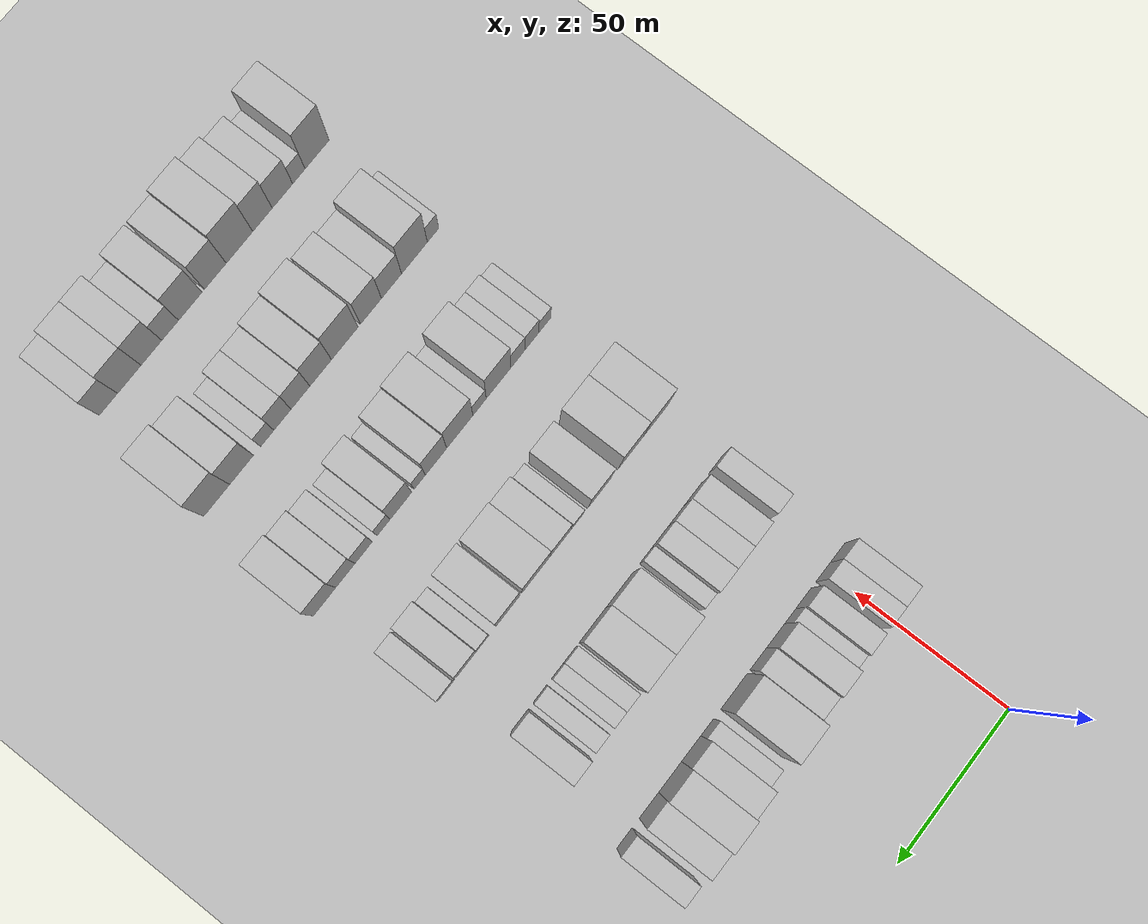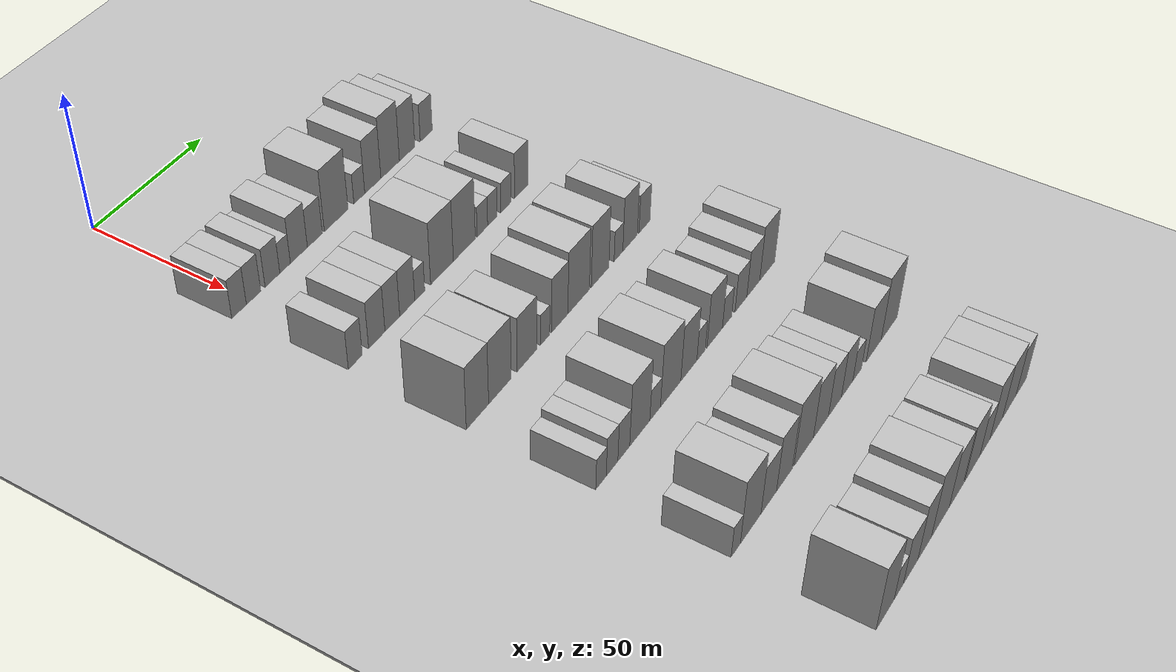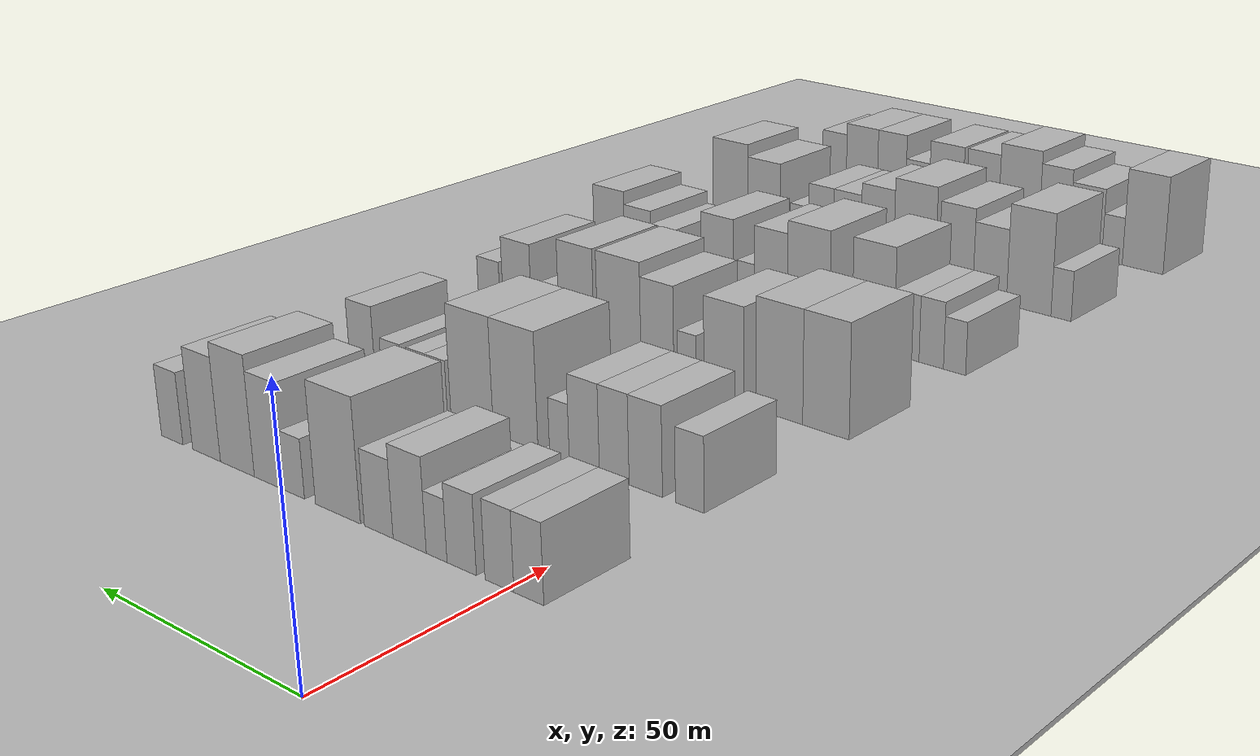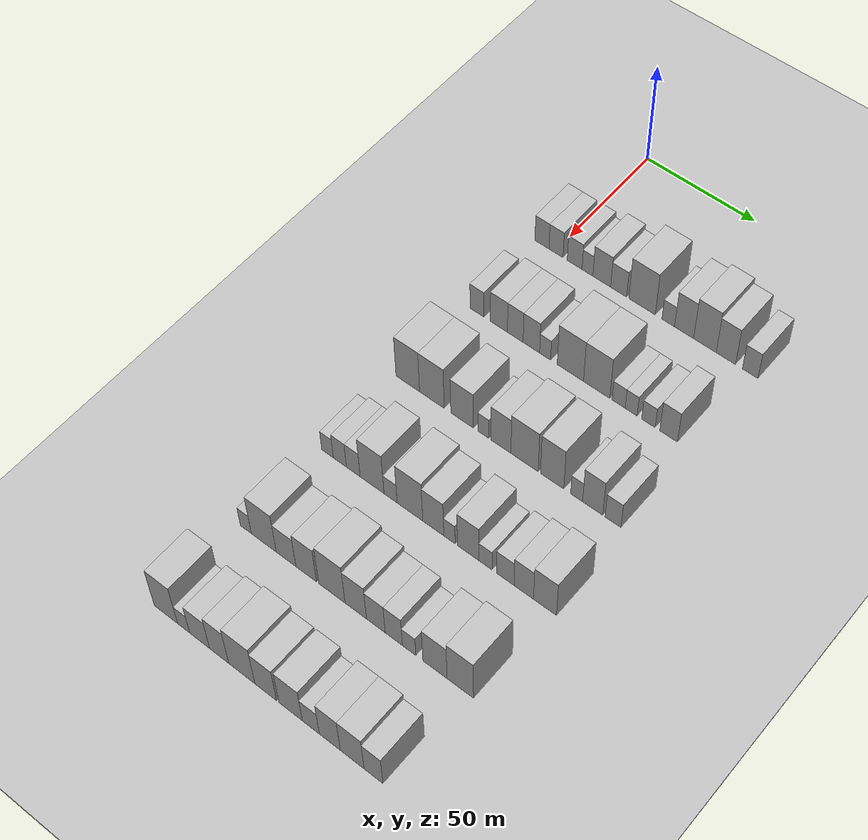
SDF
<sdf version="1.6">
 <world name="default">
  <include><name>ground_plane_1</name><uri>model://HANNAS_ground_plane</uri></include>
  <include>
   <name>ground_plane_2</name>
   <uri>model://HANNAS_ground_plane</uri>
   <pose>100 0 0  0 0 0</pose>
  </include>
  <model name="building_73">
   <static>1</static>
   <pose>50.0000 -5.6154 0 0.000000 0.000000 0.000000</pose>
   <link name="link">
    <pose>0 0 7.50 0 0 0</pose>
    <collision name="collision"><geometry><box><size>20.0000 6.6509 15.0000</size></box></geometry></collision>
    <visual name="visual">
     <cast_shadows>0</cast_shadows>
     <geometry><box><size>20.0000 6.6509 15.0000</size></box></geometry>
     <material>
      <script>
       <uri>model://HANNAS_wall/materials/scripts</uri>
       <uri>model://HANNAS_wall/materials/textures</uri>
       <name>vrc/HANNAS_wall</name>
      </script>
     </material>
    </visual>
   </link>
  </model>
  <model name="building_74">
   <static>1</static>
   <pose>50.0000 1.0127 0 0.000000 0.000000 0.000000</pose>
   <link name="link">
    <pose>0 0 7.50 0 0 0</pose>
    <collision name="collision"><geometry><box><size>20.0000 6.6054 15.0000</size></box></geometry></collision>
    <visual name="visual">
     <cast_shadows>0</cast_shadows>
     <geometry><box><size>20.0000 6.6054 15.0000</size></box></geometry>
     <material>
      <script>
       <uri>model://HANNAS_wall/materials/scripts</uri>
       <uri>model://HANNAS_wall/materials/textures</uri>
       <name>vrc/HANNAS_wall</name>
      </script>
     </material>
    </visual>
   </link>
  </model>
  <model name="building_75">
   <static>1</static>
   <pose>50.0000 9.7789 0 0.000000 0.000000 0.000000</pose>
   <link name="link">
    <pose>0 0 7.50 0 0 0</pose>
    <collision name="collision"><geometry><box><size>20.0000 6.9269 15.0000</size></box></geometry></collision>
    <visual name="visual">
     <cast_shadows>0</cast_shadows>
     <geometry><box><size>20.0000 6.9269 15.0000</size></box></geometry>
     <material>
      <script>
       <uri>model://HANNAS_wall/materials/scripts</uri>
       <uri>model://HANNAS_wall/materials/textures</uri>
       <name>vrc/HANNAS_wall</name>
      </script>
     </material>
    </visual>
   </link>
  </model>
  <model name="building_76">
   <static>1</static>
   <pose>50.0000 15.7514 0 0.000000 0.000000 0.000000</pose>
   <link name="link">
    <pose>0 0 6.00 0 0 0</pose>
    <collision name="collision"><geometry><box><size>20.0000 5.0181 12.0000</size></box></geometry></collision>
    <visual name="visual">
     <cast_shadows>0</cast_shadows>
     <geometry><box><size>20.0000 5.0181 12.0000</size></box></geometry>
     <material>
      <script>
       <uri>model://HANNAS_wall/materials/scripts</uri>
       <uri>model://HANNAS_wall/materials/textures</uri>
       <name>vrc/HANNAS_wall</name>
      </script>
     </material>
    </visual>
   </link>
  </model>
  <model name="building_77">
   <static>1</static>
   <pose>50.0000 22.3753 0 0.000000 0.000000 0.000000</pose>
   <link name="link">
    <pose>0 0 9.00 0 0 0</pose>
    <collision name="collision"><geometry><box><size>20.0000 8.2296 18.0000</size></box></geometry></collision>
    <visual name="visual">
     <cast_shadows>0</cast_shadows>
     <geometry><box><size>20.0000 8.2296 18.0000</size></box></geometry>
     <material>
      <script>
       <uri>model://HANNAS_wall/materials/scripts</uri>
       <uri>model://HANNAS_wall/materials/textures</uri>
       <name>vrc/HANNAS_wall</name>
      </script>
     </material>
    </visual>
   </link>
  </model>
  <model name="building_78">
   <static>1</static>
   <pose>50.0000 30.1486 0 0.000000 0.000000 0.000000</pose>
   <link name="link">
    <pose>0 0 7.50 0 0 0</pose>
    <collision name="collision"><geometry><box><size>20.0000 7.3172 15.0000</size></box></geometry></collision>
    <visual name="visual">
     <cast_shadows>0</cast_shadows>
     <geometry><box><size>20.0000 7.3172 15.0000</size></box></geometry>
     <material>
      <script>
       <uri>model://HANNAS_wall/materials/scripts</uri>
       <uri>model://HANNAS_wall/materials/textures</uri>
       <name>vrc/HANNAS_wall</name>
      </script>
     </material>
    </visual>
   </link>
  </model>
  <model name="building_79">
   <static>1</static>
   <pose>50.0000 40.7831 0 0.000000 0.000000 0.000000</pose>
   <link name="link">
    <pose>0 0 12.00 0 0 0</pose>
    <collision name="collision"><geometry><box><size>20.0000 11.9518 24.0000</size></box></geometry></collision>
    <visual name="visual">
     <cast_shadows>0</cast_shadows>
     <geometry><box><size>20.0000 11.9518 24.0000</size></box></geometry>
     <material>
      <script>
       <uri>model://HANNAS_wall/materials/scripts</uri>
       <uri>model://HANNAS_wall/materials/textures</uri>
       <name>vrc/HANNAS_wall</name>
      </script>
     </material>
    </visual>
   </link>
  </model>
  <model name="building_80">
   <static>1</static>
   <pose>50.0000 52.5803 0 0.000000 0.000000 0.000000</pose>
   <link name="link">
    <pose>0 0 6.00 0 0 0</pose>
    <collision name="collision"><geometry><box><size>20.0000 5.6425 12.0000</size></box></geometry></collision>
    <visual name="visual">
     <cast_shadows>0</cast_shadows>
     <geometry><box><size>20.0000 5.6425 12.0000</size></box></geometry>
     <material>
      <script>
       <uri>model://HANNAS_wall/materials/scripts</uri>
       <uri>model://HANNAS_wall/materials/textures</uri>
       <name>vrc/HANNAS_wall</name>
      </script>
     </material>
    </visual>
   </link>
  </model>
  <model name="building_81">
   <static>1</static>
   <pose>50.0000 59.6201 0 0.000000 0.000000 0.000000</pose>
   <link name="link">
    <pose>0 0 10.50 0 0 0</pose>
    <collision name="collision"><geometry><box><size>20.0000 8.4371 21.0000</size></box></geometry></collision>
    <visual name="visual">
     <cast_shadows>0</cast_shadows>
     <geometry><box><size>20.0000 8.4371 21.0000</size></box></geometry>
     <material>
      <script>
       <uri>model://HANNAS_wall/materials/scripts</uri>
       <uri>model://HANNAS_wall/materials/textures</uri>
       <name>vrc/HANNAS_wall</name>
      </script>
     </material>
    </visual>
   </link>
  </model>
  <model name="building_82">
   <static>1</static>
   <pose>50.0000 68.8127 0 0.000000 0.000000 0.000000</pose>
   <link name="link">
    <pose>0 0 12.00 0 0 0</pose>
    <collision name="collision"><geometry><box><size>20.0000 9.9481 24.0000</size></box></geometry></collision>
    <visual name="visual">
     <cast_shadows>0</cast_shadows>
     <geometry><box><size>20.0000 9.9481 24.0000</size></box></geometry>
     <material>
      <script>
       <uri>model://HANNAS_wall/materials/scripts</uri>
       <uri>model://HANNAS_wall/materials/textures</uri>
       <name>vrc/HANNAS_wall</name>
      </script>
     </material>
    </visual>
   </link>
  </model>
  <model name="building_83">
   <static>1</static>
   <pose>50.0000 77.9871 0 0.000000 0.000000 0.000000</pose>
   <link name="link">
    <pose>0 0 10.50 0 0 0</pose>
    <collision name="collision"><geometry><box><size>20.0000 8.4007 21.0000</size></box></geometry></collision>
    <visual name="visual">
     <cast_shadows>0</cast_shadows>
     <geometry><box><size>20.0000 8.4007 21.0000</size></box></geometry>
     <material>
      <script>
       <uri>model://HANNAS_wall/materials/scripts</uri>
       <uri>model://HANNAS_wall/materials/textures</uri>
       <name>vrc/HANNAS_wall</name>
      </script>
     </material>
    </visual>
   </link>
  </model>
  <model name="building_84">
   <static>1</static>
   <pose>50.0000 88.5403 0 0.000000 0.000000 0.000000</pose>
   <link name="link">
    <pose>0 0 7.50 0 0 0</pose>
    <collision name="collision"><geometry><box><size>20.0000 6.7057 15.0000</size></box></geometry></collision>
    <visual name="visual">
     <cast_shadows>0</cast_shadows>
     <geometry><box><size>20.0000 6.7057 15.0000</size></box></geometry>
     <material>
      <script>
       <uri>model://HANNAS_wall/materials/scripts</uri>
       <uri>model://HANNAS_wall/materials/textures</uri>
       <name>vrc/HANNAS_wall</name>
      </script>
     </material>
    </visual>
   </link>
  </model>
  <model name="building_210">
   <static>1</static>
   <pose>90.0000 -4.5265 0 0.000000 0.000000 0.000000</pose>
   <link name="link">
    <pose>0 0 7.50 0 0 0</pose>
    <collision name="collision"><geometry><box><size>20.0000 6.5561 15.0000</size></box></geometry></collision>
    <visual name="visual">
     <cast_shadows>0</cast_shadows>
     <geometry><box><size>20.0000 6.5561 15.0000</size></box></geometry>
     <material>
      <script>
       <uri>model://HANNAS_wall/materials/scripts</uri>
       <uri>model://HANNAS_wall/materials/textures</uri>
       <name>vrc/HANNAS_wall</name>
      </script>
     </material>
    </visual>
   </link>
  </model>
  <model name="building_211">
   <static>1</static>
   <pose>90.0000 5.6943 0 0.000000 0.000000 0.000000</pose>
   <link name="link">
    <pose>0 0 9.00 0 0 0</pose>
    <collision name="collision"><geometry><box><size>20.0000 7.8855 18.0000</size></box></geometry></collision>
    <visual name="visual">
     <cast_shadows>0</cast_shadows>
     <geometry><box><size>20.0000 7.8855 18.0000</size></box></geometry>
     <material>
      <script>
       <uri>model://HANNAS_wall/materials/scripts</uri>
       <uri>model://HANNAS_wall/materials/textures</uri>
       <name>vrc/HANNAS_wall</name>
      </script>
     </material>
    </visual>
   </link>
  </model>
  <model name="building_212">
   <static>1</static>
   <pose>90.0000 13.2458 0 0.000000 0.000000 0.000000</pose>
   <link name="link">
    <pose>0 0 9.00 0 0 0</pose>
    <collision name="collision"><geometry><box><size>20.0000 7.2176 18.0000</size></box></geometry></collision>
    <visual name="visual">
     <cast_shadows>0</cast_shadows>
     <geometry><box><size>20.0000 7.2176 18.0000</size></box></geometry>
     <material>
      <script>
       <uri>model://HANNAS_wall/materials/scripts</uri>
       <uri>model://HANNAS_wall/materials/textures</uri>
       <name>vrc/HANNAS_wall</name>
      </script>
     </material>
    </visual>
   </link>
  </model>
  <model name="building_213">
   <static>1</static>
   <pose>90.0000 20.6172 0 0.000000 0.000000 0.000000</pose>
   <link name="link">
    <pose>0 0 9.00 0 0 0</pose>
    <collision name="collision"><geometry><box><size>20.0000 7.5252 18.0000</size></box></geometry></collision>
    <visual name="visual">
     <cast_shadows>0</cast_shadows>
     <geometry><box><size>20.0000 7.5252 18.0000</size></box></geometry>
     <material>
      <script>
       <uri>model://HANNAS_wall/materials/scripts</uri>
       <uri>model://HANNAS_wall/materials/textures</uri>
       <name>vrc/HANNAS_wall</name>
      </script>
     </material>
    </visual>
   </link>
  </model>
  <model name="building_214">
   <static>1</static>
   <pose>90.0000 26.8940 0 0.000000 0.000000 0.000000</pose>
   <link name="link">
    <pose>0 0 6.00 0 0 0</pose>
    <collision name="collision"><geometry><box><size>20.0000 5.0283 12.0000</size></box></geometry></collision>
    <visual name="visual">
     <cast_shadows>0</cast_shadows>
     <geometry><box><size>20.0000 5.0283 12.0000</size></box></geometry>
     <material>
      <script>
       <uri>model://HANNAS_wall/materials/scripts</uri>
       <uri>model://HANNAS_wall/materials/textures</uri>
       <name>vrc/HANNAS_wall</name>
      </script>
     </material>
    </visual>
   </link>
  </model>
  <model name="building_215">
   <static>1</static>
   <pose>90.0000 38.3117 0 0.000000 0.000000 0.000000</pose>
   <link name="link">
    <pose>0 0 12.00 0 0 0</pose>
    <collision name="collision"><geometry><box><size>20.0000 11.8071 24.0000</size></box></geometry></collision>
    <visual name="visual">
     <cast_shadows>0</cast_shadows>
     <geometry><box><size>20.0000 11.8071 24.0000</size></box></geometry>
     <material>
      <script>
       <uri>model://HANNAS_wall/materials/scripts</uri>
       <uri>model://HANNAS_wall/materials/textures</uri>
       <name>vrc/HANNAS_wall</name>
      </script>
     </material>
    </visual>
   </link>
  </model>
  <model name="building_216">
   <static>1</static>
   <pose>90.0000 50.0583 0 0.000000 0.000000 0.000000</pose>
   <link name="link">
    <pose>0 0 12.00 0 0 0</pose>
    <collision name="collision"><geometry><box><size>20.0000 11.6860 24.0000</size></box></geometry></collision>
    <visual name="visual">
     <cast_shadows>0</cast_shadows>
     <geometry><box><size>20.0000 11.6860 24.0000</size></box></geometry>
     <material>
      <script>
       <uri>model://HANNAS_wall/materials/scripts</uri>
       <uri>model://HANNAS_wall/materials/textures</uri>
       <name>vrc/HANNAS_wall</name>
      </script>
     </material>
    </visual>
   </link>
  </model>
  <model name="building_217">
   <static>1</static>
   <pose>90.0000 59.7636 0 0.000000 0.000000 0.000000</pose>
   <link name="link">
    <pose>0 0 6.00 0 0 0</pose>
    <collision name="collision"><geometry><box><size>20.0000 5.7246 12.0000</size></box></geometry></collision>
    <visual name="visual">
     <cast_shadows>0</cast_shadows>
     <geometry><box><size>20.0000 5.7246 12.0000</size></box></geometry>
     <material>
      <script>
       <uri>model://HANNAS_wall/materials/scripts</uri>
       <uri>model://HANNAS_wall/materials/textures</uri>
       <name>vrc/HANNAS_wall</name>
      </script>
     </material>
    </visual>
   </link>
  </model>
  <model name="building_218">
   <static>1</static>
   <pose>90.0000 65.2332 0 0.000000 0.000000 0.000000</pose>
   <link name="link">
    <pose>0 0 6.00 0 0 0</pose>
    <collision name="collision"><geometry><box><size>20.0000 5.2145 12.0000</size></box></geometry></collision>
    <visual name="visual">
     <cast_shadows>0</cast_shadows>
     <geometry><box><size>20.0000 5.2145 12.0000</size></box></geometry>
     <material>
      <script>
       <uri>model://HANNAS_wall/materials/scripts</uri>
       <uri>model://HANNAS_wall/materials/textures</uri>
       <name>vrc/HANNAS_wall</name>
      </script>
     </material>
    </visual>
   </link>
  </model>
  <model name="building_219">
   <static>1</static>
   <pose>90.0000 72.7505 0 0.000000 0.000000 0.000000</pose>
   <link name="link">
    <pose>0 0 6.00 0 0 0</pose>
    <collision name="collision"><geometry><box><size>20.0000 5.8200 12.0000</size></box></geometry></collision>
    <visual name="visual">
     <cast_shadows>0</cast_shadows>
     <geometry><box><size>20.0000 5.8200 12.0000</size></box></geometry>
     <material>
      <script>
       <uri>model://HANNAS_wall/materials/scripts</uri>
       <uri>model://HANNAS_wall/materials/textures</uri>
       <name>vrc/HANNAS_wall</name>
      </script>
     </material>
    </visual>
   </link>
  </model>
  <model name="building_220">
   <static>1</static>
   <pose>90.0000 81.4489 0 0.000000 0.000000 0.000000</pose>
   <link name="link">
    <pose>0 0 9.00 0 0 0</pose>
    <collision name="collision"><geometry><box><size>20.0000 7.5768 18.0000</size></box></geometry></collision>
    <visual name="visual">
     <cast_shadows>0</cast_shadows>
     <geometry><box><size>20.0000 7.5768 18.0000</size></box></geometry>
     <material>
      <script>
       <uri>model://HANNAS_wall/materials/scripts</uri>
       <uri>model://HANNAS_wall/materials/textures</uri>
       <name>vrc/HANNAS_wall</name>
      </script>
     </material>
    </visual>
   </link>
  </model>
  <model name="building_346">
   <static>1</static>
   <pose>130.0000 -3.8484 0 0.000000 0.000000 0.000000</pose>
   <link name="link">
    <pose>0 0 12.00 0 0 0</pose>
    <collision name="collision"><geometry><box><size>20.0000 10.9476 24.0000</size></box></geometry></collision>
    <visual name="visual">
     <cast_shadows>0</cast_shadows>
     <geometry><box><size>20.0000 10.9476 24.0000</size></box></geometry>
     <material>
      <script>
       <uri>model://HANNAS_wall/materials/scripts</uri>
       <uri>model://HANNAS_wall/materials/textures</uri>
       <name>vrc/HANNAS_wall</name>
      </script>
     </material>
    </visual>
   </link>
  </model>
  <model name="building_347">
   <static>1</static>
   <pose>130.0000 7.3048 0 0.000000 0.000000 0.000000</pose>
   <link name="link">
    <pose>0 0 12.00 0 0 0</pose>
    <collision name="collision"><geometry><box><size>20.0000 11.3589 24.0000</size></box></geometry></collision>
    <visual name="visual">
     <cast_shadows>0</cast_shadows>
     <geometry><box><size>20.0000 11.3589 24.0000</size></box></geometry>
     <material>
      <script>
       <uri>model://HANNAS_wall/materials/scripts</uri>
       <uri>model://HANNAS_wall/materials/textures</uri>
       <name>vrc/HANNAS_wall</name>
      </script>
     </material>
    </visual>
   </link>
  </model>
  <model name="building_348">
   <static>1</static>
   <pose>130.0000 21.0989 0 0.000000 0.000000 0.000000</pose>
   <link name="link">
    <pose>0 0 10.50 0 0 0</pose>
    <collision name="collision"><geometry><box><size>20.0000 10.2292 21.0000</size></box></geometry></collision>
    <visual name="visual">
     <cast_shadows>0</cast_shadows>
     <geometry><box><size>20.0000 10.2292 21.0000</size></box></geometry>
     <material>
      <script>
       <uri>model://HANNAS_wall/materials/scripts</uri>
       <uri>model://HANNAS_wall/materials/textures</uri>
       <name>vrc/HANNAS_wall</name>
      </script>
     </material>
    </visual>
   </link>
  </model>
  <model name="building_349">
   <static>1</static>
   <pose>130.0000 30.6666 0 0.000000 0.000000 0.000000</pose>
   <link name="link">
    <pose>0 0 6.00 0 0 0</pose>
    <collision name="collision"><geometry><box><size>20.0000 4.9062 12.0000</size></box></geometry></collision>
    <visual name="visual">
     <cast_shadows>0</cast_shadows>
     <geometry><box><size>20.0000 4.9062 12.0000</size></box></geometry>
     <material>
      <script>
       <uri>model://HANNAS_wall/materials/scripts</uri>
       <uri>model://HANNAS_wall/materials/textures</uri>
       <name>vrc/HANNAS_wall</name>
      </script>
     </material>
    </visual>
   </link>
  </model>
  <model name="building_350">
   <static>1</static>
   <pose>130.0000 38.5355 0 0.000000 0.000000 0.000000</pose>
   <link name="link">
    <pose>0 0 10.50 0 0 0</pose>
    <collision name="collision"><geometry><box><size>20.0000 8.8316 21.0000</size></box></geometry></collision>
    <visual name="visual">
     <cast_shadows>0</cast_shadows>
     <geometry><box><size>20.0000 8.8316 21.0000</size></box></geometry>
     <material>
      <script>
       <uri>model://HANNAS_wall/materials/scripts</uri>
       <uri>model://HANNAS_wall/materials/textures</uri>
       <name>vrc/HANNAS_wall</name>
      </script>
     </material>
    </visual>
   </link>
  </model>
  <model name="building_351">
   <static>1</static>
   <pose>130.0000 48.9456 0 0.000000 0.000000 0.000000</pose>
   <link name="link">
    <pose>0 0 12.00 0 0 0</pose>
    <collision name="collision"><geometry><box><size>20.0000 11.9886 24.0000</size></box></geometry></collision>
    <visual name="visual">
     <cast_shadows>0</cast_shadows>
     <geometry><box><size>20.0000 11.9886 24.0000</size></box></geometry>
     <material>
      <script>
       <uri>model://HANNAS_wall/materials/scripts</uri>
       <uri>model://HANNAS_wall/materials/textures</uri>
       <name>vrc/HANNAS_wall</name>
      </script>
     </material>
    </visual>
   </link>
  </model>
  <model name="building_352">
   <static>1</static>
   <pose>130.0000 60.9845 0 0.000000 0.000000 0.000000</pose>
   <link name="link">
    <pose>0 0 12.00 0 0 0</pose>
    <collision name="collision"><geometry><box><size>20.0000 10.0893 24.0000</size></box></geometry></collision>
    <visual name="visual">
     <cast_shadows>0</cast_shadows>
     <geometry><box><size>20.0000 10.0893 24.0000</size></box></geometry>
     <material>
      <script>
       <uri>model://HANNAS_wall/materials/scripts</uri>
       <uri>model://HANNAS_wall/materials/textures</uri>
       <name>vrc/HANNAS_wall</name>
      </script>
     </material>
    </visual>
   </link>
  </model>
  <model name="building_353">
   <static>1</static>
   <pose>130.0000 71.5853 0 0.000000 0.000000 0.000000</pose>
   <link name="link">
    <pose>0 0 6.00 0 0 0</pose>
    <collision name="collision"><geometry><box><size>20.0000 5.1122 12.0000</size></box></geometry></collision>
    <visual name="visual">
     <cast_shadows>0</cast_shadows>
     <geometry><box><size>20.0000 5.1122 12.0000</size></box></geometry>
     <material>
      <script>
       <uri>model://HANNAS_wall/materials/scripts</uri>
       <uri>model://HANNAS_wall/materials/textures</uri>
       <name>vrc/HANNAS_wall</name>
      </script>
     </material>
    </visual>
   </link>
  </model>
  <model name="building_354">
   <static>1</static>
   <pose>130.0000 78.4220 0 0.000000 0.000000 0.000000</pose>
   <link name="link">
    <pose>0 0 10.50 0 0 0</pose>
    <collision name="collision"><geometry><box><size>20.0000 8.5613 21.0000</size></box></geometry></collision>
    <visual name="visual">
     <cast_shadows>0</cast_shadows>
     <geometry><box><size>20.0000 8.5613 21.0000</size></box></geometry>
     <material>
      <script>
       <uri>model://HANNAS_wall/materials/scripts</uri>
       <uri>model://HANNAS_wall/materials/textures</uri>
       <name>vrc/HANNAS_wall</name>
      </script>
     </material>
    </visual>
   </link>
  </model>
  <model name="building_355">
   <static>1</static>
   <pose>130.0000 87.0344 0 0.000000 0.000000 0.000000</pose>
   <link name="link">
    <pose>0 0 7.50 0 0 0</pose>
    <collision name="collision"><geometry><box><size>20.0000 6.6634 15.0000</size></box></geometry></collision>
    <visual name="visual">
     <cast_shadows>0</cast_shadows>
     <geometry><box><size>20.0000 6.6634 15.0000</size></box></geometry>
     <material>
      <script>
       <uri>model://HANNAS_wall/materials/scripts</uri>
       <uri>model://HANNAS_wall/materials/textures</uri>
       <name>vrc/HANNAS_wall</name>
      </script>
     </material>
    </visual>
   </link>
  </model>
  <model name="building_483">
   <static>1</static>
   <pose>170.0000 -6.4531 0 0.000000 0.000000 0.000000</pose>
   <link name="link">
    <pose>0 0 6.00 0 0 0</pose>
    <collision name="collision"><geometry><box><size>20.0000 5.3533 12.0000</size></box></geometry></collision>
    <visual name="visual">
     <cast_shadows>0</cast_shadows>
     <geometry><box><size>20.0000 5.3533 12.0000</size></box></geometry>
     <material>
      <script>
       <uri>model://HANNAS_wall/materials/scripts</uri>
       <uri>model://HANNAS_wall/materials/textures</uri>
       <name>vrc/HANNAS_wall</name>
      </script>
     </material>
    </visual>
   </link>
  </model>
  <model name="building_484">
   <static>1</static>
   <pose>170.0000 -0.7684 0 0.000000 0.000000 0.000000</pose>
   <link name="link">
    <pose>0 0 7.50 0 0 0</pose>
    <collision name="collision"><geometry><box><size>20.0000 6.0160 15.0000</size></box></geometry></collision>
    <visual name="visual">
     <cast_shadows>0</cast_shadows>
     <geometry><box><size>20.0000 6.0160 15.0000</size></box></geometry>
     <material>
      <script>
       <uri>model://HANNAS_wall/materials/scripts</uri>
       <uri>model://HANNAS_wall/materials/textures</uri>
       <name>vrc/HANNAS_wall</name>
      </script>
     </material>
    </visual>
   </link>
  </model>
  <model name="building_485">
   <static>1</static>
   <pose>170.0000 5.3699 0 0.000000 0.000000 0.000000</pose>
   <link name="link">
    <pose>0 0 7.50 0 0 0</pose>
    <collision name="collision"><geometry><box><size>20.0000 6.2607 15.0000</size></box></geometry></collision>
    <visual name="visual">
     <cast_shadows>0</cast_shadows>
     <geometry><box><size>20.0000 6.2607 15.0000</size></box></geometry>
     <material>
      <script>
       <uri>model://HANNAS_wall/materials/scripts</uri>
       <uri>model://HANNAS_wall/materials/textures</uri>
       <name>vrc/HANNAS_wall</name>
      </script>
     </material>
    </visual>
   </link>
  </model>
  <model name="building_486">
   <static>1</static>
   <pose>170.0000 13.9139 0 0.000000 0.000000 0.000000</pose>
   <link name="link">
    <pose>0 0 12.00 0 0 0</pose>
    <collision name="collision"><geometry><box><size>20.0000 10.8273 24.0000</size></box></geometry></collision>
    <visual name="visual">
     <cast_shadows>0</cast_shadows>
     <geometry><box><size>20.0000 10.8273 24.0000</size></box></geometry>
     <material>
      <script>
       <uri>model://HANNAS_wall/materials/scripts</uri>
       <uri>model://HANNAS_wall/materials/textures</uri>
       <name>vrc/HANNAS_wall</name>
      </script>
     </material>
    </visual>
   </link>
  </model>
  <model name="building_487">
   <static>1</static>
   <pose>170.0000 22.2603 0 0.000000 0.000000 0.000000</pose>
   <link name="link">
    <pose>0 0 6.00 0 0 0</pose>
    <collision name="collision"><geometry><box><size>20.0000 5.8656 12.0000</size></box></geometry></collision>
    <visual name="visual">
     <cast_shadows>0</cast_shadows>
     <geometry><box><size>20.0000 5.8656 12.0000</size></box></geometry>
     <material>
      <script>
       <uri>model://HANNAS_wall/materials/scripts</uri>
       <uri>model://HANNAS_wall/materials/textures</uri>
       <name>vrc/HANNAS_wall</name>
      </script>
     </material>
    </visual>
   </link>
  </model>
  <model name="building_488">
   <static>1</static>
   <pose>170.0000 30.8914 0 0.000000 0.000000 0.000000</pose>
   <link name="link">
    <pose>0 0 12.00 0 0 0</pose>
    <collision name="collision"><geometry><box><size>20.0000 11.3966 24.0000</size></box></geometry></collision>
    <visual name="visual">
     <cast_shadows>0</cast_shadows>
     <geometry><box><size>20.0000 11.3966 24.0000</size></box></geometry>
     <material>
      <script>
       <uri>model://HANNAS_wall/materials/scripts</uri>
       <uri>model://HANNAS_wall/materials/textures</uri>
       <name>vrc/HANNAS_wall</name>
      </script>
     </material>
    </visual>
   </link>
  </model>
  <model name="building_489">
   <static>1</static>
   <pose>170.0000 41.2213 0 0.000000 0.000000 0.000000</pose>
   <link name="link">
    <pose>0 0 10.50 0 0 0</pose>
    <collision name="collision"><geometry><box><size>20.0000 9.2631 21.0000</size></box></geometry></collision>
    <visual name="visual">
     <cast_shadows>0</cast_shadows>
     <geometry><box><size>20.0000 9.2631 21.0000</size></box></geometry>
     <material>
      <script>
       <uri>model://HANNAS_wall/materials/scripts</uri>
       <uri>model://HANNAS_wall/materials/textures</uri>
       <name>vrc/HANNAS_wall</name>
      </script>
     </material>
    </visual>
   </link>
  </model>
  <model name="building_490">
   <static>1</static>
   <pose>170.0000 48.3130 0 0.000000 0.000000 0.000000</pose>
   <link name="link">
    <pose>0 0 6.00 0 0 0</pose>
    <collision name="collision"><geometry><box><size>20.0000 4.9202 12.0000</size></box></geometry></collision>
    <visual name="visual">
     <cast_shadows>0</cast_shadows>
     <geometry><box><size>20.0000 4.9202 12.0000</size></box></geometry>
     <material>
      <script>
       <uri>model://HANNAS_wall/materials/scripts</uri>
       <uri>model://HANNAS_wall/materials/textures</uri>
       <name>vrc/HANNAS_wall</name>
      </script>
     </material>
    </visual>
   </link>
  </model>
  <model name="building_491">
   <static>1</static>
   <pose>170.0000 56.3992 0 0.000000 0.000000 0.000000</pose>
   <link name="link">
    <pose>0 0 10.50 0 0 0</pose>
    <collision name="collision"><geometry><box><size>20.0000 9.2522 21.0000</size></box></geometry></collision>
    <visual name="visual">
     <cast_shadows>0</cast_shadows>
     <geometry><box><size>20.0000 9.2522 21.0000</size></box></geometry>
     <material>
      <script>
       <uri>model://HANNAS_wall/materials/scripts</uri>
       <uri>model://HANNAS_wall/materials/textures</uri>
       <name>vrc/HANNAS_wall</name>
      </script>
     </material>
    </visual>
   </link>
  </model>
  <model name="building_492">
   <static>1</static>
   <pose>170.0000 63.8283 0 0.000000 0.000000 0.000000</pose>
   <link name="link">
    <pose>0 0 6.00 0 0 0</pose>
    <collision name="collision"><geometry><box><size>20.0000 5.6061 12.0000</size></box></geometry></collision>
    <visual name="visual">
     <cast_shadows>0</cast_shadows>
     <geometry><box><size>20.0000 5.6061 12.0000</size></box></geometry>
     <material>
      <script>
       <uri>model://HANNAS_wall/materials/scripts</uri>
       <uri>model://HANNAS_wall/materials/textures</uri>
       <name>vrc/HANNAS_wall</name>
      </script>
     </material>
    </visual>
   </link>
  </model>
  <model name="building_493">
   <static>1</static>
   <pose>170.0000 72.3149 0 0.000000 0.000000 0.000000</pose>
   <link name="link">
    <pose>0 0 7.50 0 0 0</pose>
    <collision name="collision"><geometry><box><size>20.0000 7.3670 15.0000</size></box></geometry></collision>
    <visual name="visual">
     <cast_shadows>0</cast_shadows>
     <geometry><box><size>20.0000 7.3670 15.0000</size></box></geometry>
     <material>
      <script>
       <uri>model://HANNAS_wall/materials/scripts</uri>
       <uri>model://HANNAS_wall/materials/textures</uri>
       <name>vrc/HANNAS_wall</name>
      </script>
     </material>
    </visual>
   </link>
  </model>
  <model name="building_494">
   <static>1</static>
   <pose>170.0000 80.0806 0 0.000000 0.000000 0.000000</pose>
   <link name="link">
    <pose>0 0 9.00 0 0 0</pose>
    <collision name="collision"><geometry><box><size>20.0000 8.1645 18.0000</size></box></geometry></collision>
    <visual name="visual">
     <cast_shadows>0</cast_shadows>
     <geometry><box><size>20.0000 8.1645 18.0000</size></box></geometry>
     <material>
      <script>
       <uri>model://HANNAS_wall/materials/scripts</uri>
       <uri>model://HANNAS_wall/materials/textures</uri>
       <name>vrc/HANNAS_wall</name>
      </script>
     </material>
    </visual>
   </link>
  </model>
  <model name="building_495">
   <static>1</static>
   <pose>170.0000 88.9478 0 0.000000 0.000000 0.000000</pose>
   <link name="link">
    <pose>0 0 10.50 0 0 0</pose>
    <collision name="collision"><geometry><box><size>20.0000 9.5699 21.0000</size></box></geometry></collision>
    <visual name="visual">
     <cast_shadows>0</cast_shadows>
     <geometry><box><size>20.0000 9.5699 21.0000</size></box></geometry>
     <material>
      <script>
       <uri>model://HANNAS_wall/materials/scripts</uri>
       <uri>model://HANNAS_wall/materials/textures</uri>
       <name>vrc/HANNAS_wall</name>
      </script>
     </material>
    </visual>
   </link>
  </model>
  <model name="building_624">
   <static>1</static>
   <pose>210.0000 -7.7898 0 0.000000 0.000000 0.000000</pose>
   <link name="link">
    <pose>0 0 6.00 0 0 0</pose>
    <collision name="collision"><geometry><box><size>20.0000 5.0367 12.0000</size></box></geometry></collision>
    <visual name="visual">
     <cast_shadows>0</cast_shadows>
     <geometry><box><size>20.0000 5.0367 12.0000</size></box></geometry>
     <material>
      <script>
       <uri>model://HANNAS_wall/materials/scripts</uri>
       <uri>model://HANNAS_wall/materials/textures</uri>
       <name>vrc/HANNAS_wall</name>
      </script>
     </material>
    </visual>
   </link>
  </model>
  <model name="building_625">
   <static>1</static>
   <pose>210.0000 0.4265 0 0.000000 0.000000 0.000000</pose>
   <link name="link">
    <pose>0 0 12.00 0 0 0</pose>
    <collision name="collision"><geometry><box><size>20.0000 11.3960 24.0000</size></box></geometry></collision>
    <visual name="visual">
     <cast_shadows>0</cast_shadows>
     <geometry><box><size>20.0000 11.3960 24.0000</size></box></geometry>
     <material>
      <script>
       <uri>model://HANNAS_wall/materials/scripts</uri>
       <uri>model://HANNAS_wall/materials/textures</uri>
       <name>vrc/HANNAS_wall</name>
      </script>
     </material>
    </visual>
   </link>
  </model>
  <model name="building_626">
   <static>1</static>
   <pose>210.0000 10.5459 0 0.000000 0.000000 0.000000</pose>
   <link name="link">
    <pose>0 0 9.00 0 0 0</pose>
    <collision name="collision"><geometry><box><size>20.0000 8.8427 18.0000</size></box></geometry></collision>
    <visual name="visual">
     <cast_shadows>0</cast_shadows>
     <geometry><box><size>20.0000 8.8427 18.0000</size></box></geometry>
     <material>
      <script>
       <uri>model://HANNAS_wall/materials/scripts</uri>
       <uri>model://HANNAS_wall/materials/textures</uri>
       <name>vrc/HANNAS_wall</name>
      </script>
     </material>
    </visual>
   </link>
  </model>
  <model name="building_627">
   <static>1</static>
   <pose>210.0000 19.5676 0 0.000000 0.000000 0.000000</pose>
   <link name="link">
    <pose>0 0 10.50 0 0 0</pose>
    <collision name="collision"><geometry><box><size>20.0000 9.2007 21.0000</size></box></geometry></collision>
    <visual name="visual">
     <cast_shadows>0</cast_shadows>
     <geometry><box><size>20.0000 9.2007 21.0000</size></box></geometry>
     <material>
      <script>
       <uri>model://HANNAS_wall/materials/scripts</uri>
       <uri>model://HANNAS_wall/materials/textures</uri>
       <name>vrc/HANNAS_wall</name>
      </script>
     </material>
    </visual>
   </link>
  </model>
  <model name="building_628">
   <static>1</static>
   <pose>210.0000 30.9552 0 0.000000 0.000000 0.000000</pose>
   <link name="link">
    <pose>0 0 12.00 0 0 0</pose>
    <collision name="collision"><geometry><box><size>20.0000 11.5745 24.0000</size></box></geometry></collision>
    <visual name="visual">
     <cast_shadows>0</cast_shadows>
     <geometry><box><size>20.0000 11.5745 24.0000</size></box></geometry>
     <material>
      <script>
       <uri>model://HANNAS_wall/materials/scripts</uri>
       <uri>model://HANNAS_wall/materials/textures</uri>
       <name>vrc/HANNAS_wall</name>
      </script>
     </material>
    </visual>
   </link>
  </model>
  <model name="building_629">
   <static>1</static>
   <pose>210.0000 41.4076 0 0.000000 0.000000 0.000000</pose>
   <link name="link">
    <pose>0 0 10.50 0 0 0</pose>
    <collision name="collision"><geometry><box><size>20.0000 9.3303 21.0000</size></box></geometry></collision>
    <visual name="visual">
     <cast_shadows>0</cast_shadows>
     <geometry><box><size>20.0000 9.3303 21.0000</size></box></geometry>
     <material>
      <script>
       <uri>model://HANNAS_wall/materials/scripts</uri>
       <uri>model://HANNAS_wall/materials/textures</uri>
       <name>vrc/HANNAS_wall</name>
      </script>
     </material>
    </visual>
   </link>
  </model>
  <model name="building_630">
   <static>1</static>
   <pose>210.0000 50.0984 0 0.000000 0.000000 0.000000</pose>
   <link name="link">
    <pose>0 0 9.00 0 0 0</pose>
    <collision name="collision"><geometry><box><size>20.0000 8.0513 18.0000</size></box></geometry></collision>
    <visual name="visual">
     <cast_shadows>0</cast_shadows>
     <geometry><box><size>20.0000 8.0513 18.0000</size></box></geometry>
     <material>
      <script>
       <uri>model://HANNAS_wall/materials/scripts</uri>
       <uri>model://HANNAS_wall/materials/textures</uri>
       <name>vrc/HANNAS_wall</name>
      </script>
     </material>
    </visual>
   </link>
  </model>
  <model name="building_631">
   <static>1</static>
   <pose>210.0000 57.7943 0 0.000000 0.000000 0.000000</pose>
   <link name="link">
    <pose>0 0 9.00 0 0 0</pose>
    <collision name="collision"><geometry><box><size>20.0000 7.3405 18.0000</size></box></geometry></collision>
    <visual name="visual">
     <cast_shadows>0</cast_shadows>
     <geometry><box><size>20.0000 7.3405 18.0000</size></box></geometry>
     <material>
      <script>
       <uri>model://HANNAS_wall/materials/scripts</uri>
       <uri>model://HANNAS_wall/materials/textures</uri>
       <name>vrc/HANNAS_wall</name>
      </script>
     </material>
    </visual>
   </link>
  </model>
  <model name="building_632">
   <static>1</static>
   <pose>210.0000 64.3118 0 0.000000 0.000000 0.000000</pose>
   <link name="link">
    <pose>0 0 6.00 0 0 0</pose>
    <collision name="collision"><geometry><box><size>20.0000 5.6946 12.0000</size></box></geometry></collision>
    <visual name="visual">
     <cast_shadows>0</cast_shadows>
     <geometry><box><size>20.0000 5.6946 12.0000</size></box></geometry>
     <material>
      <script>
       <uri>model://HANNAS_wall/materials/scripts</uri>
       <uri>model://HANNAS_wall/materials/textures</uri>
       <name>vrc/HANNAS_wall</name>
      </script>
     </material>
    </visual>
   </link>
  </model>
  <model name="building_633">
   <static>1</static>
   <pose>210.0000 75.2051 0 0.000000 0.000000 0.000000</pose>
   <link name="link">
    <pose>0 0 10.50 0 0 0</pose>
    <collision name="collision"><geometry><box><size>20.0000 10.0919 21.0000</size></box></geometry></collision>
    <visual name="visual">
     <cast_shadows>0</cast_shadows>
     <geometry><box><size>20.0000 10.0919 21.0000</size></box></geometry>
     <material>
      <script>
       <uri>model://HANNAS_wall/materials/scripts</uri>
       <uri>model://HANNAS_wall/materials/textures</uri>
       <name>vrc/HANNAS_wall</name>
      </script>
     </material>
    </visual>
   </link>
  </model>
  <model name="building_634">
   <static>1</static>
   <pose>210.0000 85.7115 0 0.000000 0.000000 0.000000</pose>
   <link name="link">
    <pose>0 0 12.00 0 0 0</pose>
    <collision name="collision"><geometry><box><size>20.0000 10.9210 24.0000</size></box></geometry></collision>
    <visual name="visual">
     <cast_shadows>0</cast_shadows>
     <geometry><box><size>20.0000 10.9210 24.0000</size></box></geometry>
     <material>
      <script>
       <uri>model://HANNAS_wall/materials/scripts</uri>
       <uri>model://HANNAS_wall/materials/textures</uri>
       <name>vrc/HANNAS_wall</name>
      </script>
     </material>
    </visual>
   </link>
  </model>
  <model name="building_762">
   <static>1</static>
   <pose>250.0000 -6.1806 0 0.000000 0.000000 0.000000</pose>
   <link name="link">
    <pose>0 0 12.00 0 0 0</pose>
    <collision name="collision"><geometry><box><size>20.0000 10.6187 24.0000</size></box></geometry></collision>
    <visual name="visual">
     <cast_shadows>0</cast_shadows>
     <geometry><box><size>20.0000 10.6187 24.0000</size></box></geometry>
     <material>
      <script>
       <uri>model://HANNAS_wall/materials/scripts</uri>
       <uri>model://HANNAS_wall/materials/textures</uri>
       <name>vrc/HANNAS_wall</name>
      </script>
     </material>
    </visual>
   </link>
  </model>
  <model name="building_763">
   <static>1</static>
   <pose>250.0000 1.8572 0 0.000000 0.000000 0.000000</pose>
   <link name="link">
    <pose>0 0 6.00 0 0 0</pose>
    <collision name="collision"><geometry><box><size>20.0000 5.4569 12.0000</size></box></geometry></collision>
    <visual name="visual">
     <cast_shadows>0</cast_shadows>
     <geometry><box><size>20.0000 5.4569 12.0000</size></box></geometry>
     <material>
      <script>
       <uri>model://HANNAS_wall/materials/scripts</uri>
       <uri>model://HANNAS_wall/materials/textures</uri>
       <name>vrc/HANNAS_wall</name>
      </script>
     </material>
    </visual>
   </link>
  </model>
  <model name="building_764">
   <static>1</static>
   <pose>250.0000 9.0398 0 0.000000 0.000000 0.000000</pose>
   <link name="link">
    <pose>0 0 9.00 0 0 0</pose>
    <collision name="collision"><geometry><box><size>20.0000 8.9082 18.0000</size></box></geometry></collision>
    <visual name="visual">
     <cast_shadows>0</cast_shadows>
     <geometry><box><size>20.0000 8.9082 18.0000</size></box></geometry>
     <material>
      <script>
       <uri>model://HANNAS_wall/materials/scripts</uri>
       <uri>model://HANNAS_wall/materials/textures</uri>
       <name>vrc/HANNAS_wall</name>
      </script>
     </material>
    </visual>
   </link>
  </model>
  <model name="building_765">
   <static>1</static>
   <pose>250.0000 17.7406 0 0.000000 0.000000 0.000000</pose>
   <link name="link">
    <pose>0 0 10.50 0 0 0</pose>
    <collision name="collision"><geometry><box><size>20.0000 8.4933 21.0000</size></box></geometry></collision>
    <visual name="visual">
     <cast_shadows>0</cast_shadows>
     <geometry><box><size>20.0000 8.4933 21.0000</size></box></geometry>
     <material>
      <script>
       <uri>model://HANNAS_wall/materials/scripts</uri>
       <uri>model://HANNAS_wall/materials/textures</uri>
       <name>vrc/HANNAS_wall</name>
      </script>
     </material>
    </visual>
   </link>
  </model>
  <model name="building_766">
   <static>1</static>
   <pose>250.0000 27.7395 0 0.000000 0.000000 0.000000</pose>
   <link name="link">
    <pose>0 0 12.00 0 0 0</pose>
    <collision name="collision"><geometry><box><size>20.0000 11.5044 24.0000</size></box></geometry></collision>
    <visual name="visual">
     <cast_shadows>0</cast_shadows>
     <geometry><box><size>20.0000 11.5044 24.0000</size></box></geometry>
     <material>
      <script>
       <uri>model://HANNAS_wall/materials/scripts</uri>
       <uri>model://HANNAS_wall/materials/textures</uri>
       <name>vrc/HANNAS_wall</name>
      </script>
     </material>
    </visual>
   </link>
  </model>
  <model name="building_767">
   <static>1</static>
   <pose>250.0000 38.1958 0 0.000000 0.000000 0.000000</pose>
   <link name="link">
    <pose>0 0 10.50 0 0 0</pose>
    <collision name="collision"><geometry><box><size>20.0000 9.4083 21.0000</size></box></geometry></collision>
    <visual name="visual">
     <cast_shadows>0</cast_shadows>
     <geometry><box><size>20.0000 9.4083 21.0000</size></box></geometry>
     <material>
      <script>
       <uri>model://HANNAS_wall/materials/scripts</uri>
       <uri>model://HANNAS_wall/materials/textures</uri>
       <name>vrc/HANNAS_wall</name>
      </script>
     </material>
    </visual>
   </link>
  </model>
  <model name="building_768">
   <static>1</static>
   <pose>250.0000 48.9187 0 0.000000 0.000000 0.000000</pose>
   <link name="link">
    <pose>0 0 10.50 0 0 0</pose>
    <collision name="collision"><geometry><box><size>20.0000 10.0374 21.0000</size></box></geometry></collision>
    <visual name="visual">
     <cast_shadows>0</cast_shadows>
     <geometry><box><size>20.0000 10.0374 21.0000</size></box></geometry>
     <material>
      <script>
       <uri>model://HANNAS_wall/materials/scripts</uri>
       <uri>model://HANNAS_wall/materials/textures</uri>
       <name>vrc/HANNAS_wall</name>
      </script>
     </material>
    </visual>
   </link>
  </model>
  <model name="building_769">
   <static>1</static>
   <pose>250.0000 57.5100 0 0.000000 0.000000 0.000000</pose>
   <link name="link">
    <pose>0 0 7.50 0 0 0</pose>
    <collision name="collision"><geometry><box><size>20.0000 7.1451 15.0000</size></box></geometry></collision>
    <visual name="visual">
     <cast_shadows>0</cast_shadows>
     <geometry><box><size>20.0000 7.1451 15.0000</size></box></geometry>
     <material>
      <script>
       <uri>model://HANNAS_wall/materials/scripts</uri>
       <uri>model://HANNAS_wall/materials/textures</uri>
       <name>vrc/HANNAS_wall</name>
      </script>
     </material>
    </visual>
   </link>
  </model>
  <model name="building_770">
   <static>1</static>
   <pose>250.0000 65.4857 0 0.000000 0.000000 0.000000</pose>
   <link name="link">
    <pose>0 0 10.50 0 0 0</pose>
    <collision name="collision"><geometry><box><size>20.0000 8.8063 21.0000</size></box></geometry></collision>
    <visual name="visual">
     <cast_shadows>0</cast_shadows>
     <geometry><box><size>20.0000 8.8063 21.0000</size></box></geometry>
     <material>
      <script>
       <uri>model://HANNAS_wall/materials/scripts</uri>
       <uri>model://HANNAS_wall/materials/textures</uri>
       <name>vrc/HANNAS_wall</name>
      </script>
     </material>
    </visual>
   </link>
  </model>
  <model name="building_771">
   <static>1</static>
   <pose>250.0000 74.8174 0 0.000000 0.000000 0.000000</pose>
   <link name="link">
    <pose>0 0 10.50 0 0 0</pose>
    <collision name="collision"><geometry><box><size>20.0000 9.8573 21.0000</size></box></geometry></collision>
    <visual name="visual">
     <cast_shadows>0</cast_shadows>
     <geometry><box><size>20.0000 9.8573 21.0000</size></box></geometry>
     <material>
      <script>
       <uri>model://HANNAS_wall/materials/scripts</uri>
       <uri>model://HANNAS_wall/materials/textures</uri>
       <name>vrc/HANNAS_wall</name>
      </script>
     </material>
    </visual>
   </link>
  </model>
  <model name="building_772">
   <static>1</static>
   <pose>250.0000 83.6089 0 0.000000 0.000000 0.000000</pose>
   <link name="link">
    <pose>0 0 9.00 0 0 0</pose>
    <collision name="collision"><geometry><box><size>20.0000 7.7257 18.0000</size></box></geometry></collision>
    <visual name="visual">
     <cast_shadows>0</cast_shadows>
     <geometry><box><size>20.0000 7.7257 18.0000</size></box></geometry>
     <material>
      <script>
       <uri>model://HANNAS_wall/materials/scripts</uri>
       <uri>model://HANNAS_wall/materials/textures</uri>
       <name>vrc/HANNAS_wall</name>
      </script>
     </material>
    </visual>
   </link>
  </model>
 </world>
</sdf>
